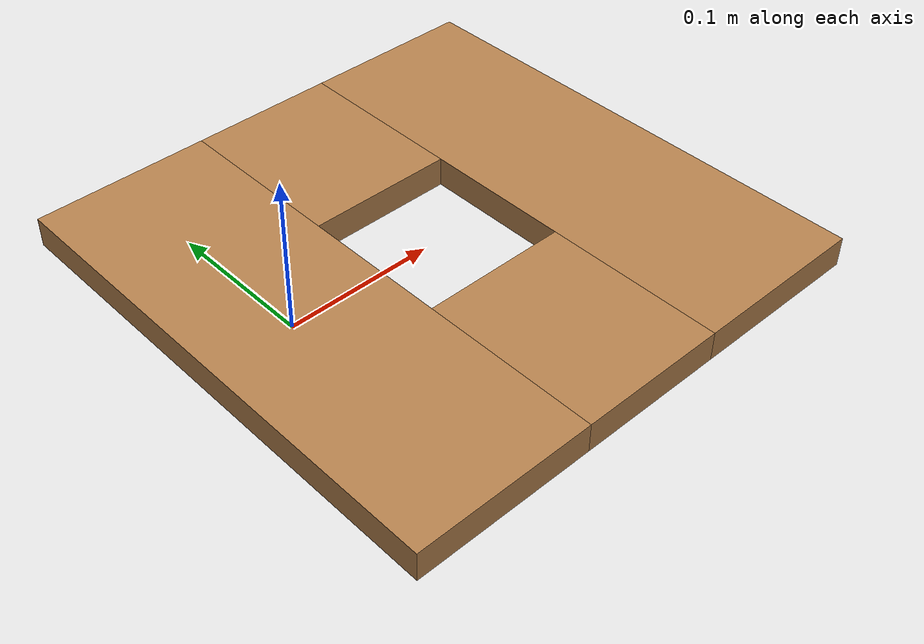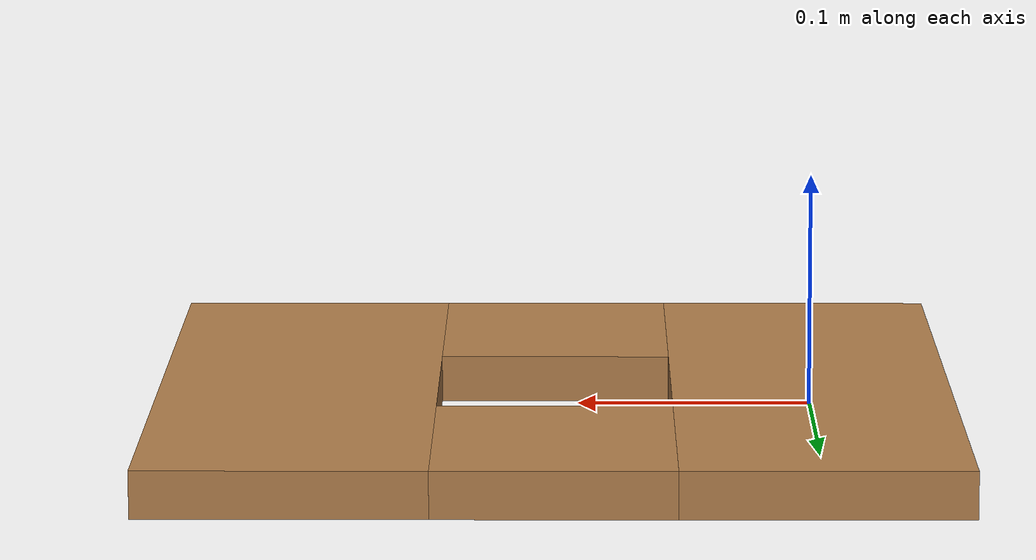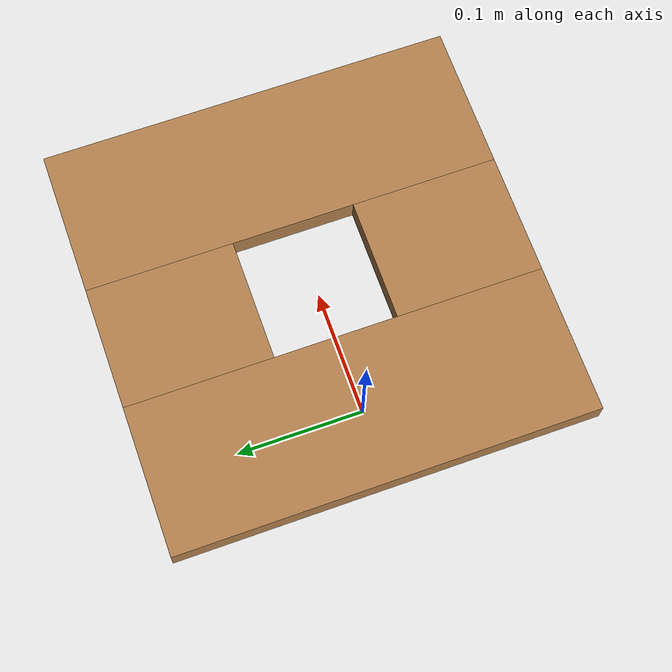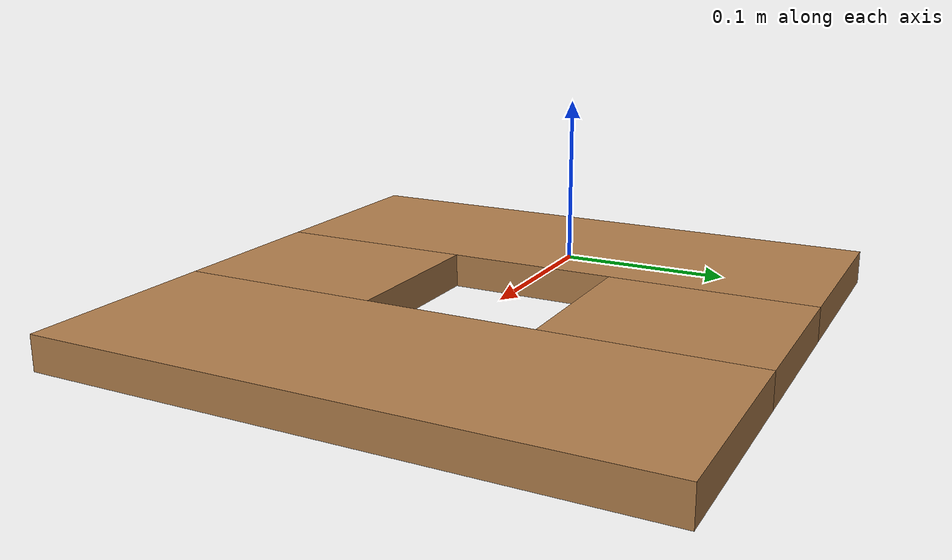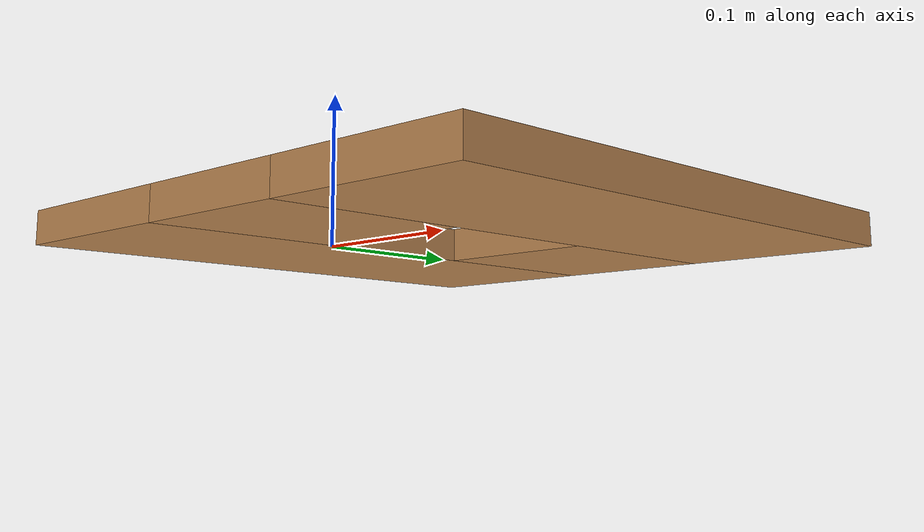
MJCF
<mujoco model="hole">
  <asset>
    <texture file="../textures/red-wood.png" type="cube" name="red-wood" />
    <material name="plate_mat" texture="red-wood" texrepeat="3 3" specular="0.4" shininess="0.1" />
  </asset>
  <worldbody>
    <body>
      <body name="collision">
        <geom pos="0 0 0" size="0.06 0.17 0.01" type="box" group="1" material="plate_mat" />
        <geom pos="0.22 0 0" size="0.06 0.17 0.01" type="box" group="1" material="plate_mat" />
        <geom pos="0.11 0.11 0" size="0.05 0.06 0.01" type="box" group="1" material="plate_mat" />
        <geom pos="0.11 -0.11 0" size="0.05 0.06 0.01" type="box" group="1" material="plate_mat" />
      </body>
      <body name="visual">
      </body>
      <site rgba="0 0 0 0" size="0.005" pos="0 0 -0.02" name="bottom_site"/>
      <site rgba="0 0 0 0" size="0.005" pos="0 0 0.02" name="top_site"/>
      <site rgba="0 0 0 0" size="0.005" pos="0.25 0.25 0.1" name="horizontal_radius_site"/>
    </body>
  </worldbody>
</mujoco>
